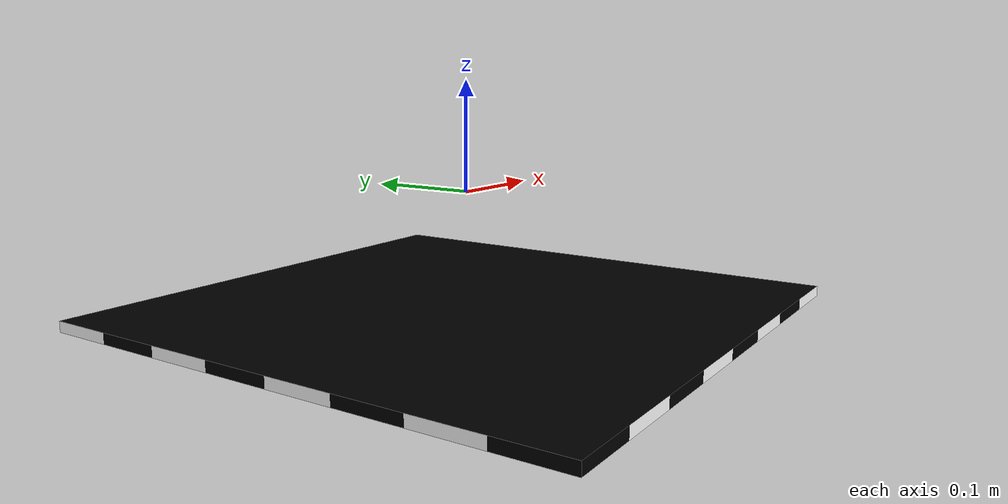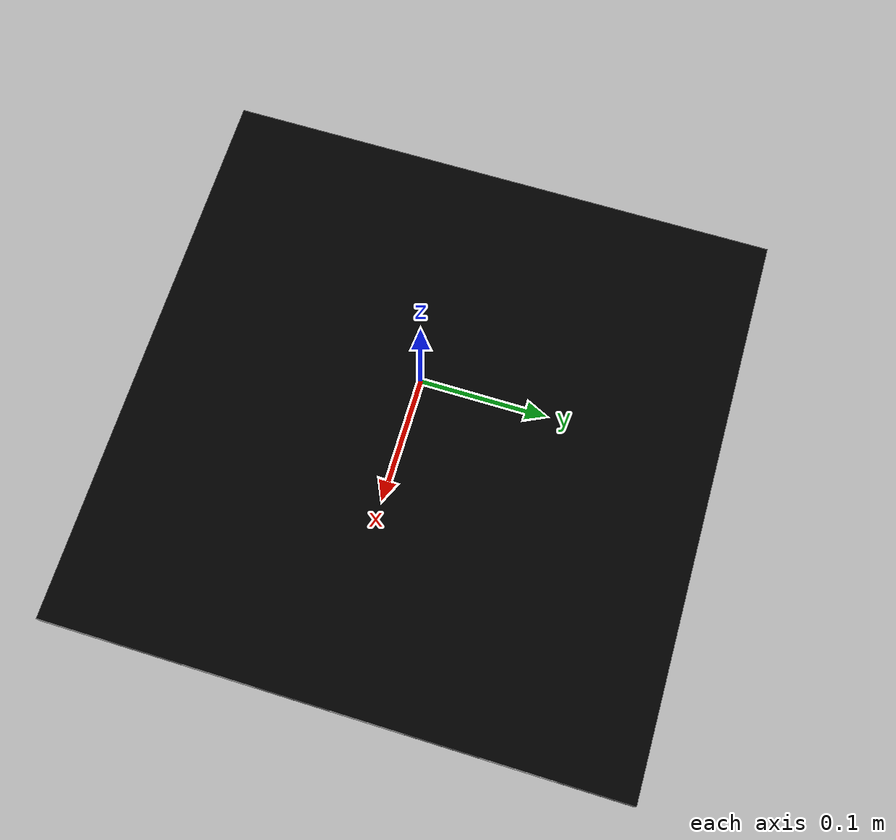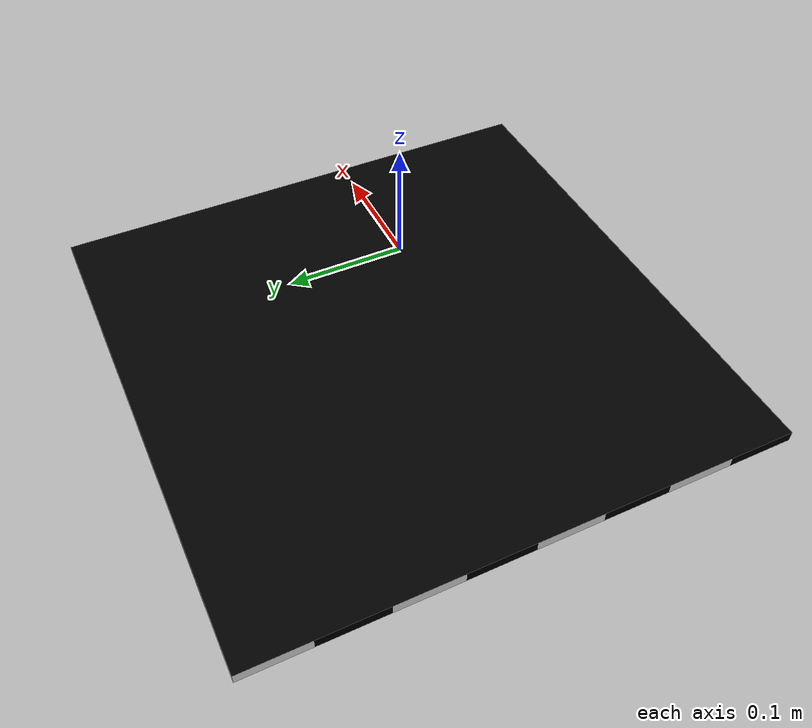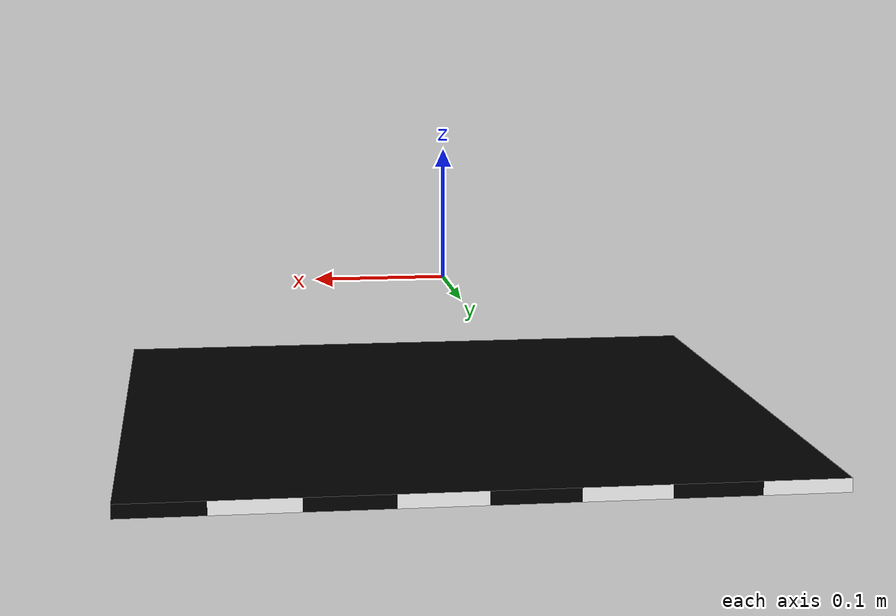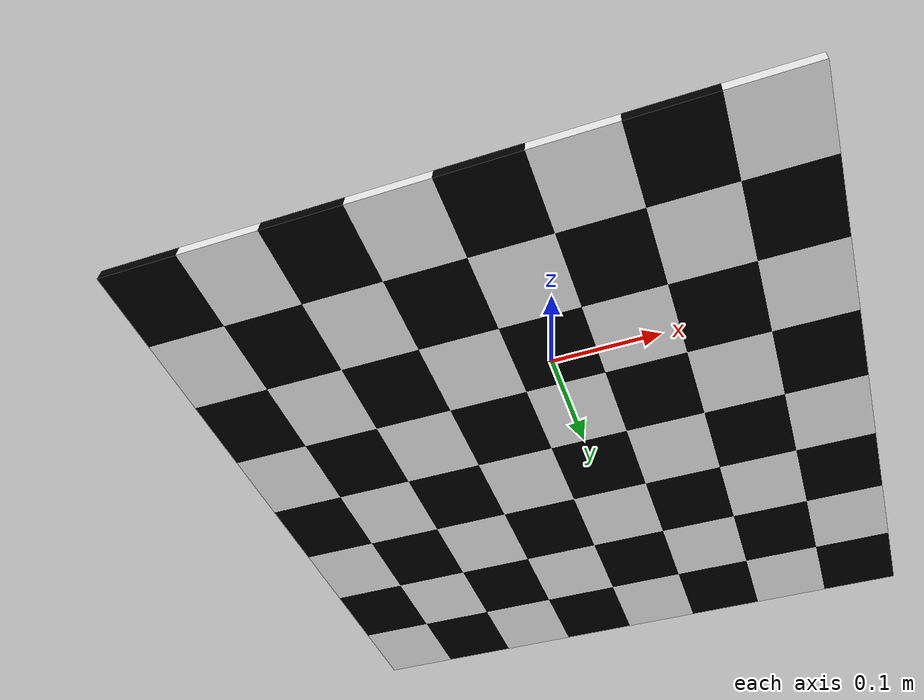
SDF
<?xml version='1.0' ?>
<sdf version="1.6">
  <model name="calibration_board">
    <static>true</static>
    <link name="link">
      <pose>0 0 0 3.1415926 0 0</pose>
      <collision name="collision">
        <geometry>
          <mesh>
            <uri>model://calibration_board/chessboard.dae</uri>
          </mesh>
        </geometry>
      </collision>
      <visual name="visual">
        <geometry>
          <mesh>
            <uri>model://calibration_board/chessboard.dae</uri>
          </mesh>
        </geometry>
      </visual>
    </link>
  </model>
</sdf>
